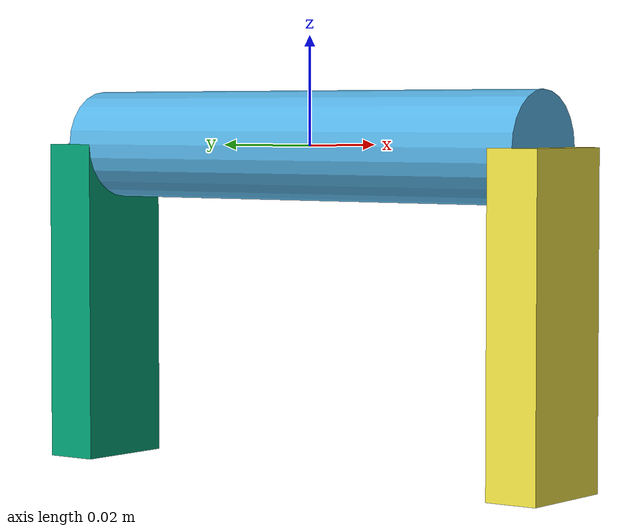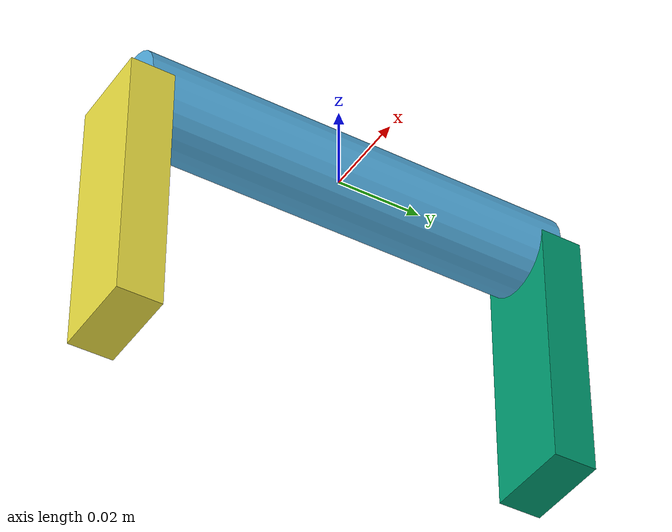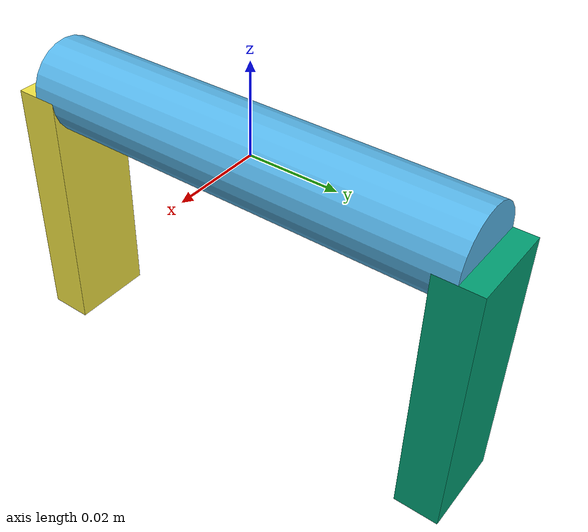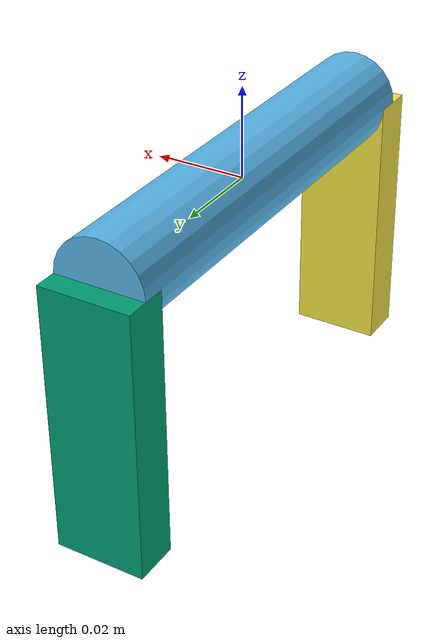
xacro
<?xml version="1.0" ?>
<robot name="roomac" xmlns:xacro="http://www.ros.org/wiki/xacro">
  <link name="gripper_right_grip"/>
  <joint name="right_grip" type="fixed">
    <origin rpy="0 0 0" xyz="0.0 0.0 -0.04"/>
    <parent link="gripper_right_1"/>
    <child link="gripper_right_grip"/>
  </joint>

  <link name="gripper_right_1">
    <collision>
      <origin xyz="0 0 0" rpy="1.5708 0 0"/>
      <geometry>
        <cylinder length="0.1" radius="0.01"/>
      </geometry>
    </collision>

    <visual>
      <origin xyz="0 0 0" rpy="1.5708 0 0"/>
      <geometry>
        <cylinder length="0.1" radius="0.01"/>
      </geometry>
    </visual>

    <inertial>
      <origin xyz="0 0 0" rpy="1.5708 0 0"/>
      <mass value="0.4"/>
      <inertia
        ixx="0.05" ixy="0.0" ixz="0.0"
        iyy="0.002" iyz="0.0"
        izz="0.05"/>
    </inertial>
  </link>

  <joint name="finger1_joint" type="prismatic">
    <parent link="gripper_right_1"/>
    <child link="finger1"/>
    <origin xyz="0 0.05 0" rpy="0 0 0"/>
    <axis xyz="0 1 0"/>
    <limit effort="100" velocity="100" lower="-0.05" upper="0.0"/>
  </joint>

  <link name="finger1">
    <collision>
      <origin xyz="0 0 -0.03" rpy="0 0 0"/>
      <geometry>
        <box size="0.02 0.01 0.06" />
      </geometry>
    </collision>

    <visual>
      <origin xyz="0 0 -0.03" rpy="0 0 0"/>
      <geometry>
        <box size="0.02 0.01 0.06" />
      </geometry>
    </visual>

    <inertial>
      <origin xyz="0 0 -0.03" rpy="0 0 0"/>
      <mass value="0.2"/>
      <inertia
        ixx="0.02" ixy="0.0" ixz="0.0"
        iyy="0.02" iyz="0.0"
        izz="0.001"/>
    </inertial>
  </link>

  <joint name="finger2_joint" type="prismatic">
    <parent link="gripper_right_1"/>
    <child link="finger2"/>
    <origin xyz="0 -0.05 0" rpy="0 0 0"/>
    <axis xyz="0 1 0"/>
    <limit effort="100" velocity="100" lower="0.0" upper="0.05"/>
  </joint>

  <link name="finger2">
    <collision>
      <origin xyz="0 0 -0.03" rpy="0 0 0"/>
      <geometry>
        <box size="0.02 0.01 0.06" />
      </geometry>
    </collision>

    <visual>
      <origin xyz="0 0 -0.03" rpy="0 0 0"/>
      <geometry>
        <box size="0.02 0.01 0.06" />
      </geometry>
    </visual>

    <inertial>
      <origin xyz="0 0 -0.03" rpy="0 0 0"/>
      <mass value="0.2"/>
      <inertia
        ixx="0.02" ixy="0.0" ixz="0.0"
        iyy="0.02" iyz="0.0"
        izz="0.001"/>
    </inertial>
  </link>
</robot>
